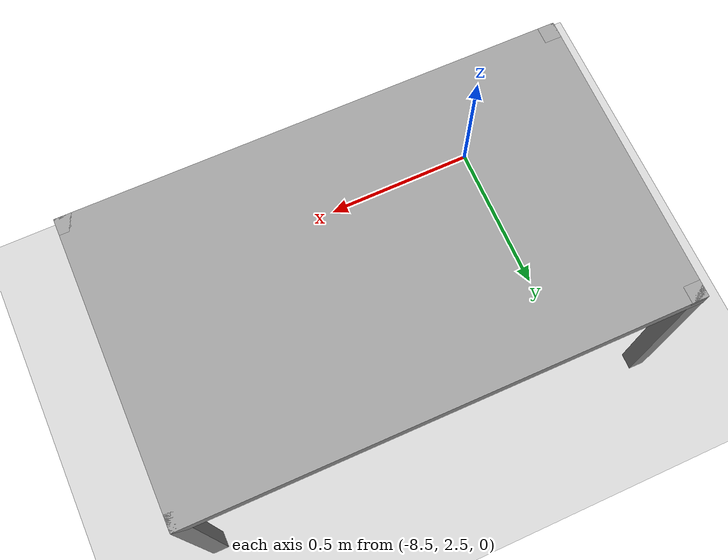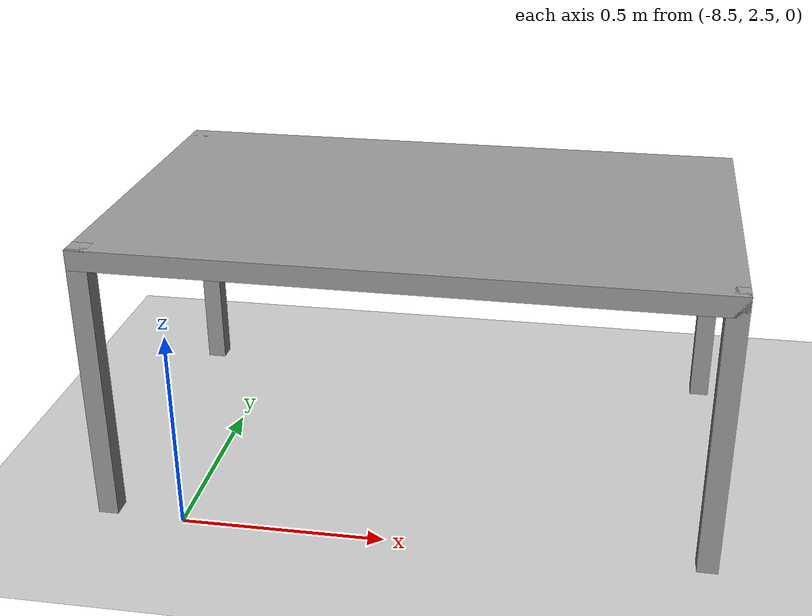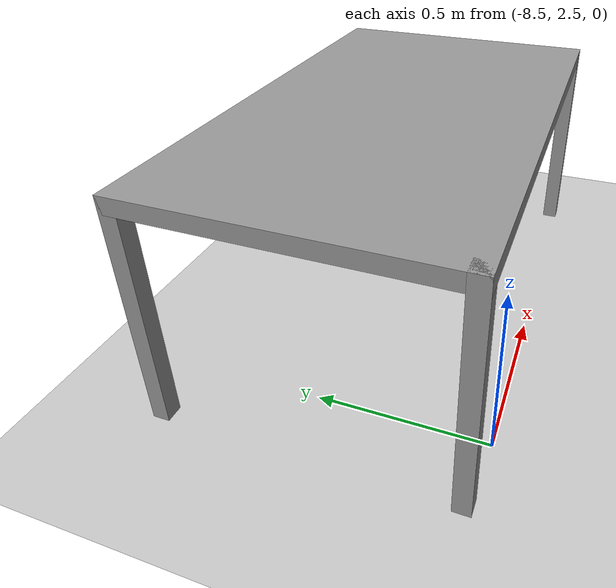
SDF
<sdf version="1.6">
 <world name="default">
  <model name="ground_plane">
   <static>1</static>
   <link name="link">
    <collision name="collision">
     <geometry><plane><normal>0 0 1</normal><size>100 100</size></plane></geometry>
     <surface><friction><ode><mu>100</mu><mu2>50</mu2></ode></friction></surface>
    </collision>
    <visual name="visual">
     <cast_shadows>0</cast_shadows>
     <geometry><plane><normal>0 0 1</normal><size>100 100</size></plane></geometry>
     <material>
      <script><uri>file://media/materials/scripts/gazebo.material</uri><name>Gazebo/Grey</name></script>
     </material>
    </visual>
   </link>
  </model>
  <model name="dining_table">
   <link name="link_0">
    <pose>0 0 0.675 0 -0 0</pose>
    <inertial>
     <mass>1</mass>
     <inertia>
      <ixx>0.166667</ixx>
      <ixy>0</ixy>
      <ixz>0</ixz>
      <iyy>0.166667</iyy>
      <iyz>0</iyz>
      <izz>0.166667</izz>
     </inertia>
    </inertial>
    <visual name="visual">
     <geometry><box><size>1.5 0.9 0.05</size></box></geometry>
     <material>
      <lighting>1</lighting>
      <script><uri>file://media/materials/scripts/gazebo.material</uri><name>Gazebo/Grey</name></script>
      <shader type="pixel"><normal_map>__default__</normal_map></shader>
      <ambient>1 1 1 1</ambient>
      <diffuse>0.7 0.7 0.7 1</diffuse>
      <specular>0.01 0.01 0.01 1</specular>
      <emissive>0 0 0 1</emissive>
     </material>
    </visual>
    <collision name="collision">
     <geometry><box><size>1.5 0.9 0.05</size></box></geometry>
     <surface>
      <friction>
       <ode><mu>1</mu><mu2>1</mu2><fdir1>0 0 0</fdir1><slip1>0</slip1><slip2>0</slip2></ode>
       <torsional>
        <coefficient>1</coefficient>
        <patch_radius>0</patch_radius>
        <surface_radius>0</surface_radius>
        <use_patch_radius>1</use_patch_radius>
        <ode><slip>0</slip></ode>
       </torsional>
      </friction>
      <bounce><restitution_coefficient>0</restitution_coefficient><threshold>1e+06</threshold></bounce>
      <contact>
       <collide_without_contact>0</collide_without_contact>
       <collide_without_contact_bitmask>1</collide_without_contact_bitmask>
       <collide_bitmask>1</collide_bitmask>
       <ode>
        <soft_cfm>0</soft_cfm>
        <soft_erp>0.2</soft_erp>
        <kp>1e+13</kp>
        <kd>1</kd>
        <max_vel>0.01</max_vel>
        <min_depth>0</min_depth>
       </ode>
       <bullet>
        <split_impulse>1</split_impulse>
        <split_impulse_penetration_threshold>-0.01</split_impulse_penetration_threshold>
        <soft_cfm>0</soft_cfm>
        <soft_erp>0.2</soft_erp>
        <kp>1e+13</kp>
        <kd>1</kd>
       </bullet>
      </contact>
     </surface>
    </collision>
   </link>
   <link name="link_1">
    <pose>-0.725 -0.425 0.35 0 -0 0</pose>
    <inertial>
     <mass>1</mass>
     <inertia>
      <ixx>0.166667</ixx>
      <ixy>0</ixy>
      <ixz>0</ixz>
      <iyy>0.166667</iyy>
      <iyz>0</iyz>
      <izz>0.166667</izz>
     </inertia>
    </inertial>
    <visual name="visual">
     <geometry><box><size>0.05 0.05 0.7</size></box></geometry>
     <material>
      <lighting>1</lighting>
      <script><uri>file://media/materials/scripts/gazebo.material</uri><name>Gazebo/Grey</name></script>
      <shader type="pixel"><normal_map>__default__</normal_map></shader>
      <ambient>1 1 1 1</ambient>
      <diffuse>0.7 0.7 0.7 1</diffuse>
      <specular>0.01 0.01 0.01 1</specular>
      <emissive>0 0 0 1</emissive>
     </material>
    </visual>
    <collision name="collision">
     <geometry><box><size>0.05 0.05 0.7</size></box></geometry>
     <surface>
      <friction>
       <ode><mu>1</mu><mu2>1</mu2><fdir1>0 0 0</fdir1><slip1>0</slip1><slip2>0</slip2></ode>
       <torsional>
        <coefficient>1</coefficient>
        <patch_radius>0</patch_radius>
        <surface_radius>0</surface_radius>
        <use_patch_radius>1</use_patch_radius>
        <ode><slip>0</slip></ode>
       </torsional>
      </friction>
      <bounce><restitution_coefficient>0</restitution_coefficient><threshold>1e+06</threshold></bounce>
      <contact>
       <collide_without_contact>0</collide_without_contact>
       <collide_without_contact_bitmask>1</collide_without_contact_bitmask>
       <collide_bitmask>1</collide_bitmask>
       <ode>
        <soft_cfm>0</soft_cfm>
        <soft_erp>0.2</soft_erp>
        <kp>1e+13</kp>
        <kd>1</kd>
        <max_vel>0.01</max_vel>
        <min_depth>0</min_depth>
       </ode>
       <bullet>
        <split_impulse>1</split_impulse>
        <split_impulse_penetration_threshold>-0.01</split_impulse_penetration_threshold>
        <soft_cfm>0</soft_cfm>
        <soft_erp>0.2</soft_erp>
        <kp>1e+13</kp>
        <kd>1</kd>
       </bullet>
      </contact>
     </surface>
    </collision>
   </link>
   <link name="link_1_clone">
    <pose>-0.725 0.425 0.35 0 -0 0</pose>
    <inertial>
     <mass>1</mass>
     <inertia>
      <ixx>0.166667</ixx>
      <ixy>0</ixy>
      <ixz>0</ixz>
      <iyy>0.166667</iyy>
      <iyz>0</iyz>
      <izz>0.166667</izz>
     </inertia>
    </inertial>
    <visual name="visual">
     <geometry><box><size>0.05 0.05 0.7</size></box></geometry>
     <material>
      <lighting>1</lighting>
      <script><uri>file://media/materials/scripts/gazebo.material</uri><name>Gazebo/Grey</name></script>
      <shader type="pixel"><normal_map>__default__</normal_map></shader>
      <ambient>1 1 1 1</ambient>
      <diffuse>0.7 0.7 0.7 1</diffuse>
      <specular>0.01 0.01 0.01 1</specular>
      <emissive>0 0 0 1</emissive>
     </material>
    </visual>
    <collision name="collision">
     <geometry><box><size>0.05 0.05 0.7</size></box></geometry>
     <surface>
      <friction>
       <ode><mu>1</mu><mu2>1</mu2><fdir1>0 0 0</fdir1><slip1>0</slip1><slip2>0</slip2></ode>
       <torsional>
        <coefficient>1</coefficient>
        <patch_radius>0</patch_radius>
        <surface_radius>0</surface_radius>
        <use_patch_radius>1</use_patch_radius>
        <ode><slip>0</slip></ode>
       </torsional>
      </friction>
      <bounce><restitution_coefficient>0</restitution_coefficient><threshold>1e+06</threshold></bounce>
      <contact>
       <collide_without_contact>0</collide_without_contact>
       <collide_without_contact_bitmask>1</collide_without_contact_bitmask>
       <collide_bitmask>1</collide_bitmask>
       <ode>
        <soft_cfm>0</soft_cfm>
        <soft_erp>0.2</soft_erp>
        <kp>1e+13</kp>
        <kd>1</kd>
        <max_vel>0.01</max_vel>
        <min_depth>0</min_depth>
       </ode>
       <bullet>
        <split_impulse>1</split_impulse>
        <split_impulse_penetration_threshold>-0.01</split_impulse_penetration_threshold>
        <soft_cfm>0</soft_cfm>
        <soft_erp>0.2</soft_erp>
        <kp>1e+13</kp>
        <kd>1</kd>
       </bullet>
      </contact>
     </surface>
    </collision>
   </link>
   <link name="link_1_clone_0">
    <pose>0.725 0.425 0.35 0 -0 0</pose>
    <inertial>
     <mass>1</mass>
     <inertia>
      <ixx>0.166667</ixx>
      <ixy>0</ixy>
      <ixz>0</ixz>
      <iyy>0.166667</iyy>
      <iyz>0</iyz>
      <izz>0.166667</izz>
     </inertia>
    </inertial>
    <visual name="visual">
     <geometry><box><size>0.05 0.05 0.7</size></box></geometry>
     <material>
      <lighting>1</lighting>
      <script><uri>file://media/materials/scripts/gazebo.material</uri><name>Gazebo/Grey</name></script>
      <shader type="pixel"><normal_map>__default__</normal_map></shader>
      <ambient>1 1 1 1</ambient>
      <diffuse>0.7 0.7 0.7 1</diffuse>
      <specular>0.01 0.01 0.01 1</specular>
      <emissive>0 0 0 1</emissive>
     </material>
    </visual>
    <collision name="collision">
     <geometry><box><size>0.05 0.05 0.7</size></box></geometry>
     <surface>
      <friction>
       <ode><mu>1</mu><mu2>1</mu2><fdir1>0 0 0</fdir1><slip1>0</slip1><slip2>0</slip2></ode>
       <torsional>
        <coefficient>1</coefficient>
        <patch_radius>0</patch_radius>
        <surface_radius>0</surface_radius>
        <use_patch_radius>1</use_patch_radius>
        <ode><slip>0</slip></ode>
       </torsional>
      </friction>
      <bounce><restitution_coefficient>0</restitution_coefficient><threshold>1e+06</threshold></bounce>
      <contact>
       <collide_without_contact>0</collide_without_contact>
       <collide_without_contact_bitmask>1</collide_without_contact_bitmask>
       <collide_bitmask>1</collide_bitmask>
       <ode>
        <soft_cfm>0</soft_cfm>
        <soft_erp>0.2</soft_erp>
        <kp>1e+13</kp>
        <kd>1</kd>
        <max_vel>0.01</max_vel>
        <min_depth>0</min_depth>
       </ode>
       <bullet>
        <split_impulse>1</split_impulse>
        <split_impulse_penetration_threshold>-0.01</split_impulse_penetration_threshold>
        <soft_cfm>0</soft_cfm>
        <soft_erp>0.2</soft_erp>
        <kp>1e+13</kp>
        <kd>1</kd>
       </bullet>
      </contact>
     </surface>
    </collision>
   </link>
   <link name="link_1_clone_1">
    <pose>0.725 -0.425 0.35 0 -0 0</pose>
    <inertial>
     <mass>1</mass>
     <inertia>
      <ixx>0.166667</ixx>
      <ixy>0</ixy>
      <ixz>0</ixz>
      <iyy>0.166667</iyy>
      <iyz>0</iyz>
      <izz>0.166667</izz>
     </inertia>
    </inertial>
    <visual name="visual">
     <geometry><box><size>0.05 0.05 0.7</size></box></geometry>
     <material>
      <lighting>1</lighting>
      <script><uri>file://media/materials/scripts/gazebo.material</uri><name>Gazebo/Grey</name></script>
      <shader type="pixel"><normal_map>__default__</normal_map></shader>
      <ambient>1 1 1 1</ambient>
      <diffuse>0.7 0.7 0.7 1</diffuse>
      <specular>0.01 0.01 0.01 1</specular>
      <emissive>0 0 0 1</emissive>
     </material>
    </visual>
    <collision name="collision">
     <geometry><box><size>0.05 0.05 0.7</size></box></geometry>
     <surface>
      <friction>
       <ode><mu>1</mu><mu2>1</mu2><fdir1>0 0 0</fdir1><slip1>0</slip1><slip2>0</slip2></ode>
       <torsional>
        <coefficient>1</coefficient>
        <patch_radius>0</patch_radius>
        <surface_radius>0</surface_radius>
        <use_patch_radius>1</use_patch_radius>
        <ode><slip>0</slip></ode>
       </torsional>
      </friction>
      <bounce><restitution_coefficient>0</restitution_coefficient><threshold>1e+06</threshold></bounce>
      <contact>
       <collide_without_contact>0</collide_without_contact>
       <collide_without_contact_bitmask>1</collide_without_contact_bitmask>
       <collide_bitmask>1</collide_bitmask>
       <ode>
        <soft_cfm>0</soft_cfm>
        <soft_erp>0.2</soft_erp>
        <kp>1e+13</kp>
        <kd>1</kd>
        <max_vel>0.01</max_vel>
        <min_depth>0</min_depth>
       </ode>
       <bullet>
        <split_impulse>1</split_impulse>
        <split_impulse_penetration_threshold>-0.01</split_impulse_penetration_threshold>
        <soft_cfm>0</soft_cfm>
        <soft_erp>0.2</soft_erp>
        <kp>1e+13</kp>
        <kd>1</kd>
       </bullet>
      </contact>
     </surface>
    </collision>
   </link>
   <joint name="link_0_JOINT_1" type="fixed">
    <parent>link_0</parent>
    <child>link_1</child>
    <physics>
     <ode><limit><cfm>0</cfm><erp>0.2</erp></limit><suspension><cfm>0</cfm><erp>0.2</erp></suspension></ode>
    </physics>
   </joint>
   <joint name="link_0_JOINT_2" type="fixed">
    <parent>link_0</parent>
    <child>link_1_clone</child>
    <physics>
     <ode><limit><cfm>0</cfm><erp>0.2</erp></limit><suspension><cfm>0</cfm><erp>0.2</erp></suspension></ode>
    </physics>
   </joint>
   <joint name="link_0_JOINT_3" type="fixed">
    <parent>link_0</parent>
    <child>link_1_clone_1</child>
    <physics>
     <ode><limit><cfm>0</cfm><erp>0.2</erp></limit><suspension><cfm>0</cfm><erp>0.2</erp></suspension></ode>
    </physics>
   </joint>
   <joint name="link_0_JOINT_4" type="fixed">
    <parent>link_0</parent>
    <child>link_1_clone_0</child>
    <physics>
     <ode><limit><cfm>0</cfm><erp>0.2</erp></limit><suspension><cfm>0</cfm><erp>0.2</erp></suspension></ode>
    </physics>
   </joint>
   <static>0</static>
   <pose>-7.96415 2.94737 -1e-06 2e-06 0 -0.006948</pose>
  </model>
 </world>
</sdf>
